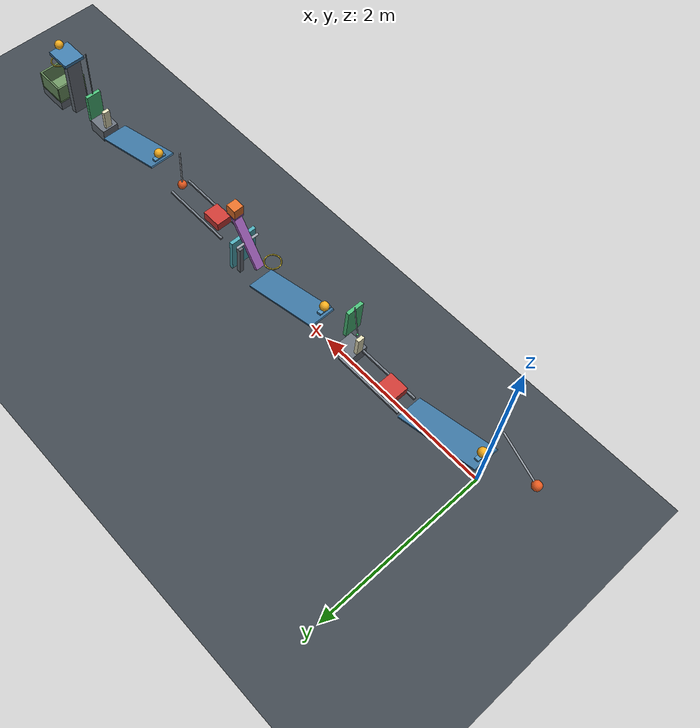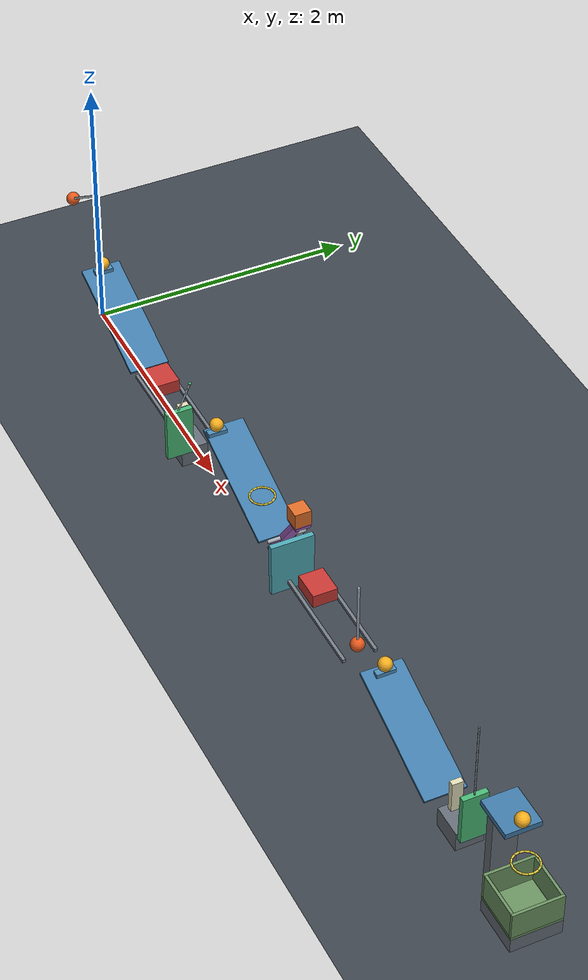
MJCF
<mujoco model="revised_domino_chain">
  <compiler angle="degree" autolimits="true"/>
  <option timestep="0.002" gravity="0 0 -9.81" integrator="implicitfast" solver="Newton" iterations="100" tolerance="1e-10"/>
  <size nconmax="1000" njmax="4000"/>
  <visual>
    <global azimuth="90" elevation="-18"/>
    <map znear="0.01" zfar="30"/>
    <quality shadowsize="2048"/>
  </visual>

  <worldbody>
    <light name="main_light" pos="3 -3 6" dir="0 0.4 -1" diffuse="0.85 0.85 0.85"/>
    <light name="fill_light" pos="3 3 4" dir="0 -0.4 -1" diffuse="0.45 0.45 0.45"/>
    <camera name="overview" pos="3.1 -7 3.2" xyaxes="1 0 0 0 0.36 0.933"/>
    <geom name="floor" type="plane" size="10 5 0.1" rgba="0.24 0.27 0.30 1" friction="0.68 0.005 0.0001" solref="0.008 0.6901" solimp="0.95 0.99 0.001"/>

    <!-- The raised pivot clears the ramp while the bob strikes the parked ball. -->
    <body name="pendulum1" pos="-0.045901 0 1.07" euler="0 55 0">
      <joint name="pendulum1_hinge" type="hinge" axis="0 -1 0" damping="0.04" range="0 135"/>
      <geom name="pendulum1_rod" type="capsule" fromto="0 0 0 0 0 -0.55" size="0.009" mass="0.04" rgba="0.65 0.68 0.72 1" friction="0.68 0.005 0.0001" solref="0.008 0.6901"/>
      <geom name="pendulum1_bob" type="sphere" pos="0 0 -0.55" size="0.05" mass="0.36" rgba="0.90 0.35 0.12 1" friction="0.68 0.005 0.0001" solref="0.008 0.6901"/>
    </body>

    <body name="ball1" pos="0.054099 0 0.52">
      <freejoint name="ball1_free"/>
      <geom name="ball1_geom" type="sphere" size="0.05" mass="0.20" rgba="0.96 0.68 0.12 1" friction="0.68 0.005 0.0001" solref="0.008 0.6901"/>
    </body>

    <!-- Horizontal parking ledges prevent gravity from releasing the ramp balls early. -->
    <!-- The inclined surfaces remain 0.95 m long, 0.30 m wide, and inclined 19 degrees. -->
    <body name="ramp1" pos="0 0 0">
      <geom name="ramp1_surface" type="box" pos="0.445865 0 0.295190" euler="0 19 0" size="0.475 0.15 0.01" rgba="0.25 0.48 0.66 1" friction="0.68 0.005 0.0001" solref="0.008 0.6901"/>
      <geom name="ramp1_parking_ledge" type="box" pos="0.054099 0 0.455" size="0.025 0.07 0.015" rgba="0.30 0.55 0.72 1" friction="0.68 0.005 0.0001" solref="0.008 0.6901"/>
    </body>

    <body name="cart1" pos="1.128242 0 0.20">
      <joint name="cart1_slide" type="slide" axis="1 0 0" damping="0.20" range="0 0.40" solreflimit="0.004 1"/>
      <geom name="cart1_geom" type="box" size="0.11 0.09 0.05" mass="0.50" rgba="0.78 0.22 0.20 1" friction="0.68 0.005 0.0001" solref="0.008 0.6901"/>
    </body>

    <body name="cart1_guide" pos="1.328242 0 0.13">
      <geom name="cart1_guide_left" type="box" pos="0 -0.115 0" size="0.40 0.012 0.012" contype="0" conaffinity="0" rgba="0.45 0.48 0.52 1"/>
      <geom name="cart1_guide_right" type="box" pos="0 0.115 0" size="0.40 0.012 0.012" contype="0" conaffinity="0" rgba="0.45 0.48 0.52 1"/>
    </body>

    <!-- Contact now begins at slide displacement 0.395 m, just before the 0.40 m stop. -->
    <body name="domino1" pos="1.653242 -0.065 0.27">
      <freejoint name="domino1_free"/>
      <geom name="domino1_geom" type="box" size="0.02 0.04 0.12" mass="0.25" rgba="0.88 0.86 0.72 1" friction="0.68 0.005 0.0001" solref="0.008 0.6901"/>
    </body>

    <body name="domino1_support" pos="1.741242 -0.065 0.075">
      <geom name="domino1_support_geom" type="box" size="0.11 0.10 0.075" rgba="0.40 0.43 0.47 1" friction="0.68 0.005 0.0001" solref="0.008 0.6901"/>
    </body>

    <!-- The panel's sweep lies beside ramp2; a rigid bracket reaches the parked ball. -->
    <!-- Total assembly mass is 0.30 kg. Small joint stiction suppresses untriggered drift. -->
    <body name="flap1" pos="1.873242 -0.19 0.15">
      <joint name="flap1_hinge" type="hinge" axis="0 1 0" damping="0.04" frictionloss="0.02" range="0 65" solreflimit="0.004 1"/>
      <geom name="flap1_panel" type="box" pos="0 0 0.20" size="0.02 0.10 0.20" mass="0.27" rgba="0.28 0.72 0.46 1" friction="0.68 0.005 0.0001" solref="0.008 0.6901"/>
      <geom name="flap1_striker_bracket" type="capsule" fromto="0 0 0.40 -0.23 0.19 0.40" size="0.006" mass="0.025" rgba="0.50 0.55 0.58 1" friction="0.68 0.005 0.0001" solref="0.008 0.6901"/>
      <geom name="flap1_striker_tip" type="sphere" pos="-0.23 0.19 0.40" size="0.012" mass="0.005" rgba="0.28 0.72 0.46 1" friction="0.68 0.005 0.0001" solref="0.008 0.6901"/>
    </body>

    <body name="ball2" pos="2.094099 0 0.52">
      <freejoint name="ball2_free"/>
      <geom name="ball2_geom" type="sphere" size="0.05" mass="0.20" rgba="0.96 0.68 0.12 1" friction="0.68 0.005 0.0001" solref="0.008 0.6901"/>
    </body>

    <body name="ramp2" pos="0 0 0">
      <geom name="ramp2_surface" type="box" pos="2.485865 0.075 0.295190" euler="0 19 0" size="0.475 0.15 0.01" rgba="0.25 0.48 0.66 1" friction="0.68 0.005 0.0001" solref="0.008 0.6901"/>
      <geom name="ramp2_parking_ledge" type="box" pos="2.094099 0 0.455" size="0.025 0.07 0.015" rgba="0.30 0.55 0.72 1" friction="0.68 0.005 0.0001" solref="0.008 0.6901"/>
    </body>

    <body name="seesaw1" pos="3.224658 0 0.416225" euler="0 -55 0">
      <joint name="seesaw1_hinge" type="hinge" axis="0 -1 0" damping="0.04" range="0 40" solreflimit="0.004 1"/>
      <geom name="seesaw1_beam" type="box" size="0.325 0.05 0.02" mass="0.52" rgba="0.62 0.37 0.72 1" friction="0.68 0.005 0.0001" solref="0.008 0.6901"/>
      <geom name="seesaw1_end_pad" type="box" pos="0.333192 0 0.005736" euler="0 55 0" size="0.065 0.055 0.01" mass="0.03" rgba="0.62 0.37 0.72 1" friction="0.68 0.005 0.0001" solref="0.008 0.6901"/>
    </body>

    <body name="seesaw1_support" pos="3.224658 0 0.19">
      <geom name="seesaw1_support_post" type="box" pos="0 0.10 0" size="0.025 0.025 0.19" rgba="0.40 0.43 0.47 1" friction="0.68 0.005 0.0001" solref="0.008 0.6901"/>
      <geom name="seesaw1_support_axle" type="capsule" fromto="0 -0.13 0.226225 0 0.13 0.226225" size="0.014" contype="0" conaffinity="0" rgba="0.65 0.68 0.72 1"/>
    </body>

    <!-- Initial support contact is intentional: the seesaw initially carries block1. -->
    <body name="block1" pos="3.411073 0 0.762449">
      <freejoint name="block1_free"/>
      <geom name="block1_geom" type="box" size="0.06 0.06 0.06" mass="0.35" rgba="0.88 0.43 0.16 1" friction="0.68 0.005 0.0001" solref="0.008 0.6901"/>
    </body>

    <!-- Repositioned near the previous run's descending block trajectory. -->
    <!-- This remains a blocking opening for the specified 0.12 m cube. -->
    <!-- The capsule polygon has approximately 0.16 m minimum clear diameter. -->
    <body name="ring1" pos="2.84 0 0.462449">
      <geom name="ring1_segment00" type="capsule" fromto="0.088704 0 0 0.081951 0.033945 0" size="0.007" rgba="0.85 0.76 0.22 1" friction="0.68 0.005 0.0001" solref="0.008 0.6901"/>
      <geom name="ring1_segment01" type="capsule" fromto="0.081951 0.033945 0 0.062723 0.062723 0" size="0.007" rgba="0.85 0.76 0.22 1" friction="0.68 0.005 0.0001" solref="0.008 0.6901"/>
      <geom name="ring1_segment02" type="capsule" fromto="0.062723 0.062723 0 0.033945 0.081951 0" size="0.007" rgba="0.85 0.76 0.22 1" friction="0.68 0.005 0.0001" solref="0.008 0.6901"/>
      <geom name="ring1_segment03" type="capsule" fromto="0.033945 0.081951 0 0 0.088704 0" size="0.007" rgba="0.85 0.76 0.22 1" friction="0.68 0.005 0.0001" solref="0.008 0.6901"/>
      <geom name="ring1_segment04" type="capsule" fromto="0 0.088704 0 -0.033945 0.081951 0" size="0.007" rgba="0.85 0.76 0.22 1" friction="0.68 0.005 0.0001" solref="0.008 0.6901"/>
      <geom name="ring1_segment05" type="capsule" fromto="-0.033945 0.081951 0 -0.062723 0.062723 0" size="0.007" rgba="0.85 0.76 0.22 1" friction="0.68 0.005 0.0001" solref="0.008 0.6901"/>
      <geom name="ring1_segment06" type="capsule" fromto="-0.062723 0.062723 0 -0.081951 0.033945 0" size="0.007" rgba="0.85 0.76 0.22 1" friction="0.68 0.005 0.0001" solref="0.008 0.6901"/>
      <geom name="ring1_segment07" type="capsule" fromto="-0.081951 0.033945 0 -0.088704 0 0" size="0.007" rgba="0.85 0.76 0.22 1" friction="0.68 0.005 0.0001" solref="0.008 0.6901"/>
      <geom name="ring1_segment08" type="capsule" fromto="-0.088704 0 0 -0.081951 -0.033945 0" size="0.007" rgba="0.85 0.76 0.22 1" friction="0.68 0.005 0.0001" solref="0.008 0.6901"/>
      <geom name="ring1_segment09" type="capsule" fromto="-0.081951 -0.033945 0 -0.062723 -0.062723 0" size="0.007" rgba="0.85 0.76 0.22 1" friction="0.68 0.005 0.0001" solref="0.008 0.6901"/>
      <geom name="ring1_segment10" type="capsule" fromto="-0.062723 -0.062723 0 -0.033945 -0.081951 0" size="0.007" rgba="0.85 0.76 0.22 1" friction="0.68 0.005 0.0001" solref="0.008 0.6901"/>
      <geom name="ring1_segment11" type="capsule" fromto="-0.033945 -0.081951 0 0 -0.088704 0" size="0.007" rgba="0.85 0.76 0.22 1" friction="0.68 0.005 0.0001" solref="0.008 0.6901"/>
      <geom name="ring1_segment12" type="capsule" fromto="0 -0.088704 0 0.033945 -0.081951 0" size="0.007" rgba="0.85 0.76 0.22 1" friction="0.68 0.005 0.0001" solref="0.008 0.6901"/>
      <geom name="ring1_segment13" type="capsule" fromto="0.033945 -0.081951 0 0.062723 -0.062723 0" size="0.007" rgba="0.85 0.76 0.22 1" friction="0.68 0.005 0.0001" solref="0.008 0.6901"/>
      <geom name="ring1_segment14" type="capsule" fromto="0.062723 -0.062723 0 0.081951 -0.033945 0" size="0.007" rgba="0.85 0.76 0.22 1" friction="0.68 0.005 0.0001" solref="0.008 0.6901"/>
      <geom name="ring1_segment15" type="capsule" fromto="0.081951 -0.033945 0 0.088704 0 0" size="0.007" rgba="0.85 0.76 0.22 1" friction="0.68 0.005 0.0001" solref="0.008 0.6901"/>
    </body>

    <body name="door1" pos="3.30 0 0.02">
      <joint name="door1_hinge" type="hinge" axis="0 1 0" damping="0.04" range="0 70" solreflimit="0.004 1"/>
      <geom name="door1_panel" type="box" pos="0 0 0.21" size="0.02 0.16 0.21" mass="0.45" rgba="0.30 0.66 0.71 1" friction="0.68 0.005 0.0001" solref="0.008 0.6901"/>
    </body>

    <body name="cart2" pos="3.70 0 0.35">
      <joint name="cart2_slide" type="slide" axis="1 0 0" damping="0.20" range="0 0.42" solreflimit="0.004 1"/>
      <geom name="cart2_geom" type="box" size="0.11 0.09 0.05" mass="0.50" rgba="0.78 0.22 0.20 1" friction="0.68 0.005 0.0001" solref="0.008 0.6901"/>
    </body>

    <body name="cart2_guide" pos="3.91 0 0.28">
      <geom name="cart2_guide_left" type="box" pos="0 -0.115 0" size="0.41 0.012 0.012" contype="0" conaffinity="0" rgba="0.45 0.48 0.52 1"/>
      <geom name="cart2_guide_right" type="box" pos="0 0.115 0" size="0.41 0.012 0.012" contype="0" conaffinity="0" rgba="0.45 0.48 0.52 1"/>
    </body>

    <body name="pendulum2" pos="4.28 0 0.85">
      <joint name="pendulum2_hinge" type="hinge" axis="0 -1 0" damping="0.04" range="0 38" solreflimit="0.004 1"/>
      <geom name="pendulum2_rod" type="capsule" fromto="0 0 0 0 0 -0.50" size="0.009" mass="0.035" rgba="0.65 0.68 0.72 1" friction="0.68 0.005 0.0001" solref="0.008 0.6901"/>
      <geom name="pendulum2_bob" type="sphere" pos="0 0 -0.50" size="0.05" mass="0.315" rgba="0.90 0.35 0.12 1" friction="0.68 0.005 0.0001" solref="0.008 0.6901"/>
    </body>

    <body name="ball3" pos="4.664099 0 0.52">
      <freejoint name="ball3_free"/>
      <geom name="ball3_geom" type="sphere" size="0.05" mass="0.20" rgba="0.96 0.68 0.12 1" friction="0.68 0.005 0.0001" solref="0.008 0.6901"/>
    </body>

    <body name="ramp3" pos="0 0 0">
      <geom name="ramp3_surface" type="box" pos="5.055865 0 0.295190" euler="0 19 0" size="0.475 0.15 0.01" rgba="0.25 0.48 0.66 1" friction="0.68 0.005 0.0001" solref="0.008 0.6901"/>
      <geom name="ramp3_parking_ledge" type="box" pos="4.664099 0 0.455" size="0.025 0.07 0.015" rgba="0.30 0.55 0.72 1" friction="0.68 0.005 0.0001" solref="0.008 0.6901"/>
    </body>

    <body name="domino2" pos="5.628242 0 0.27">
      <freejoint name="domino2_free"/>
      <geom name="domino2_geom" type="box" size="0.02 0.04 0.12" mass="0.25" rgba="0.88 0.86 0.72 1" friction="0.68 0.005 0.0001" solref="0.008 0.6901"/>
    </body>

    <!-- A 2 mm gap avoids initial support-to-flap contact. -->
    <body name="domino2_support" pos="5.706242 0 0.075">
      <geom name="domino2_support_geom" type="box" size="0.12 0.10 0.075" rgba="0.40 0.43 0.47 1" friction="0.68 0.005 0.0001" solref="0.008 0.6901"/>
    </body>

    <body name="flap2" pos="5.848242 0 1.08">
      <joint name="flap2_hinge" type="hinge" axis="0 -1 0" damping="0.04" range="0 60" solreflimit="0.004 1"/>
      <geom name="flap2_arm" type="capsule" fromto="0 0 0 0 0 -0.59" size="0.006" mass="0.02" rgba="0.50 0.55 0.58 1" friction="0.68 0.005 0.0001" solref="0.008 0.6901"/>
      <geom name="flap2_panel" type="box" pos="0 0 -0.78" size="0.02 0.09 0.19" mass="0.26" rgba="0.28 0.72 0.46 1" friction="0.68 0.005 0.0001" solref="0.008 0.6901"/>
    </body>

    <body name="ball4" pos="6.398242 0 0.83">
      <freejoint name="ball4_free"/>
      <geom name="ball4_geom" type="sphere" size="0.05" mass="0.20" rgba="0.96 0.68 0.12 1" friction="0.68 0.005 0.0001" solref="0.008 0.6901"/>
    </body>

    <body name="shelf1" pos="6.273242 0 0.76">
      <geom name="shelf1_surface" type="box" size="0.15 0.125 0.02" rgba="0.25 0.48 0.66 1" friction="0.68 0.005 0.0001" solref="0.008 0.6901"/>
    </body>

    <body name="shelf1_support" pos="6.19 0 0.37">
      <geom name="shelf1_support_post" type="box" size="0.035 0.09 0.37" rgba="0.40 0.43 0.47 1" friction="0.68 0.005 0.0001" solref="0.008 0.6901"/>
    </body>

    <body name="ring2" pos="6.478242 0 0.53">
      <geom name="ring2_segment00" type="capsule" fromto="0.088704 0 0 0.081951 0.033945 0" size="0.007" rgba="0.85 0.76 0.22 1" friction="0.68 0.005 0.0001" solref="0.008 0.6901"/>
      <geom name="ring2_segment01" type="capsule" fromto="0.081951 0.033945 0 0.062723 0.062723 0" size="0.007" rgba="0.85 0.76 0.22 1" friction="0.68 0.005 0.0001" solref="0.008 0.6901"/>
      <geom name="ring2_segment02" type="capsule" fromto="0.062723 0.062723 0 0.033945 0.081951 0" size="0.007" rgba="0.85 0.76 0.22 1" friction="0.68 0.005 0.0001" solref="0.008 0.6901"/>
      <geom name="ring2_segment03" type="capsule" fromto="0.033945 0.081951 0 0 0.088704 0" size="0.007" rgba="0.85 0.76 0.22 1" friction="0.68 0.005 0.0001" solref="0.008 0.6901"/>
      <geom name="ring2_segment04" type="capsule" fromto="0 0.088704 0 -0.033945 0.081951 0" size="0.007" rgba="0.85 0.76 0.22 1" friction="0.68 0.005 0.0001" solref="0.008 0.6901"/>
      <geom name="ring2_segment05" type="capsule" fromto="-0.033945 0.081951 0 -0.062723 0.062723 0" size="0.007" rgba="0.85 0.76 0.22 1" friction="0.68 0.005 0.0001" solref="0.008 0.6901"/>
      <geom name="ring2_segment06" type="capsule" fromto="-0.062723 0.062723 0 -0.081951 0.033945 0" size="0.007" rgba="0.85 0.76 0.22 1" friction="0.68 0.005 0.0001" solref="0.008 0.6901"/>
      <geom name="ring2_segment07" type="capsule" fromto="-0.081951 0.033945 0 -0.088704 0 0" size="0.007" rgba="0.85 0.76 0.22 1" friction="0.68 0.005 0.0001" solref="0.008 0.6901"/>
      <geom name="ring2_segment08" type="capsule" fromto="-0.088704 0 0 -0.081951 -0.033945 0" size="0.007" rgba="0.85 0.76 0.22 1" friction="0.68 0.005 0.0001" solref="0.008 0.6901"/>
      <geom name="ring2_segment09" type="capsule" fromto="-0.081951 -0.033945 0 -0.062723 -0.062723 0" size="0.007" rgba="0.85 0.76 0.22 1" friction="0.68 0.005 0.0001" solref="0.008 0.6901"/>
      <geom name="ring2_segment10" type="capsule" fromto="-0.062723 -0.062723 0 -0.033945 -0.081951 0" size="0.007" rgba="0.85 0.76 0.22 1" friction="0.68 0.005 0.0001" solref="0.008 0.6901"/>
      <geom name="ring2_segment11" type="capsule" fromto="-0.033945 -0.081951 0 0 -0.088704 0" size="0.007" rgba="0.85 0.76 0.22 1" friction="0.68 0.005 0.0001" solref="0.008 0.6901"/>
      <geom name="ring2_segment12" type="capsule" fromto="0 -0.088704 0 0.033945 -0.081951 0" size="0.007" rgba="0.85 0.76 0.22 1" friction="0.68 0.005 0.0001" solref="0.008 0.6901"/>
      <geom name="ring2_segment13" type="capsule" fromto="0.033945 -0.081951 0 0.062723 -0.062723 0" size="0.007" rgba="0.85 0.76 0.22 1" friction="0.68 0.005 0.0001" solref="0.008 0.6901"/>
      <geom name="ring2_segment14" type="capsule" fromto="0.062723 -0.062723 0 0.081951 -0.033945 0" size="0.007" rgba="0.85 0.76 0.22 1" friction="0.68 0.005 0.0001" solref="0.008 0.6901"/>
      <geom name="ring2_segment15" type="capsule" fromto="0.081951 -0.033945 0 0.088704 0 0" size="0.007" rgba="0.85 0.76 0.22 1" friction="0.68 0.005 0.0001" solref="0.008 0.6901"/>
    </body>

    <body name="box1" pos="6.478242 0 0.11">
      <geom name="box1_bottom" type="box" pos="0 0 0.01" size="0.18 0.18 0.01" rgba="0.42 0.57 0.38 1" friction="0.68 0.005 0.0001" solref="0.008 0.6901"/>
      <geom name="box1_wall_left" type="box" pos="-0.17 0 0.12" size="0.01 0.18 0.10" rgba="0.42 0.57 0.38 1" friction="0.68 0.005 0.0001" solref="0.008 0.6901"/>
      <geom name="box1_wall_right" type="box" pos="0.17 0 0.12" size="0.01 0.18 0.10" rgba="0.42 0.57 0.38 1" friction="0.68 0.005 0.0001" solref="0.008 0.6901"/>
      <geom name="box1_wall_front" type="box" pos="0 -0.17 0.12" size="0.16 0.01 0.10" rgba="0.42 0.57 0.38 1" friction="0.68 0.005 0.0001" solref="0.008 0.6901"/>
      <geom name="box1_wall_back" type="box" pos="0 0.17 0.12" size="0.16 0.01 0.10" rgba="0.42 0.57 0.38 1" friction="0.68 0.005 0.0001" solref="0.008 0.6901"/>
    </body>

    <body name="box1_support" pos="6.478242 0 0.055">
      <geom name="box1_support_geom" type="box" size="0.18 0.18 0.055" rgba="0.40 0.43 0.47 1" friction="0.68 0.005 0.0001" solref="0.008 0.6901"/>
    </body>
  </worldbody>

  <!-- Fixed controls supply assist torques, not timed or feedback-controlled actions. -->
  <actuator>
    <motor name="flap1_assist" joint="flap1_hinge" gear="1" ctrllimited="true" ctrlrange="0 0.055"/>
    <motor name="seesaw1_assist" joint="seesaw1_hinge" gear="1" ctrllimited="true" ctrlrange="0 0.68"/>
  </actuator>

  <!-- Default initial poses and identically zero initial generalized velocities. -->
  <keyframe>
    <key name="start" time="0" ctrl="0.055 0.68"/>
  </keyframe>
</mujoco>
